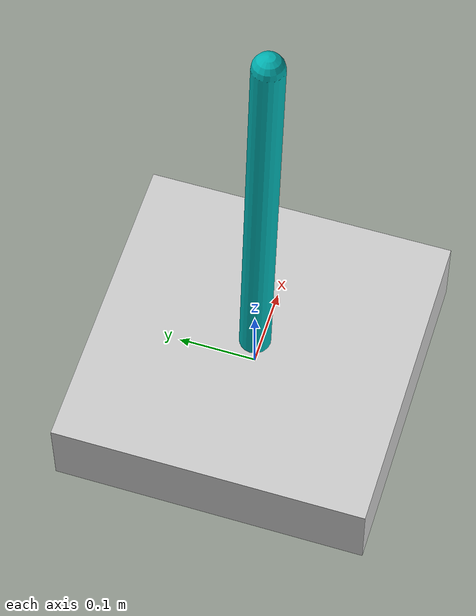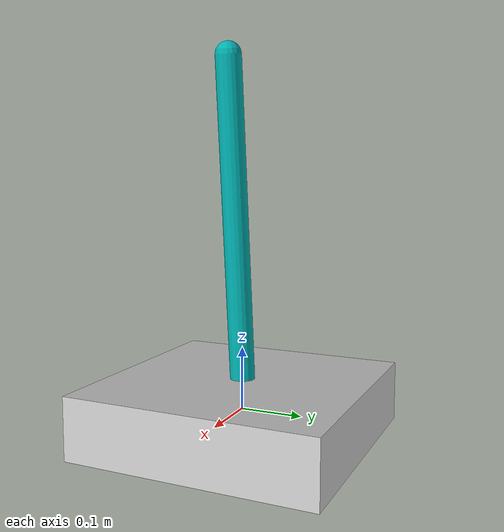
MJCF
<mujoco model="inverted_pendulum">
    <compiler inertiafromgeom="true"/>

    <!-- 世界环境设置 -->
    <option timestep="0.002" iterations="50" integrator="RK4" gravity="0 0 -9.81"/>

    <default>
        <joint damping="0.05" armature="0.01"/>
        <geom contype="0" conaffinity="0" density="1000"/>
    </default>

    <worldbody>
        <!-- 基座（固定） -->
        <body name="base" pos="0 0 0">
            <geom name="base_geom" type="box" size="0.2 0.2 0.05" rgba="0.8 0.8 0.8 1"/>
            <body name="pole" pos="0 0 0.05">
                <!-- 铰链关节，绕y轴自由旋转，无角度限制 -->
                <joint name="hinge" type="hinge" axis="0 1 0" pos="0 0 0" damping="0.05"/>
                <!-- 摆杆，初始位置略微偏离垂直 -->
                <geom name="pole_geom" type="capsule" fromto="0 0 0 0.05 0 0.5" size="0.02" rgba="0 0.7 0.7 1"/>
            </body>
        </body>
    </worldbody>

    <actuator>
        <!--主动单元，用于后续控制 -->
        <motor name="motor" joint="hinge" ctrlrange="-2 2" ctrllimited="true"/>
    </actuator>

    <sensor>
        <!-- 传感器 -->
        <jointpos name="pole_angle" joint="hinge"/>
        <jointvel name="pole_velocity" joint="hinge"/>
    </sensor>

</mujoco>
